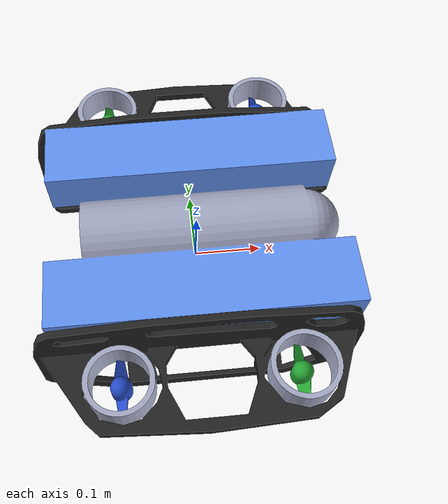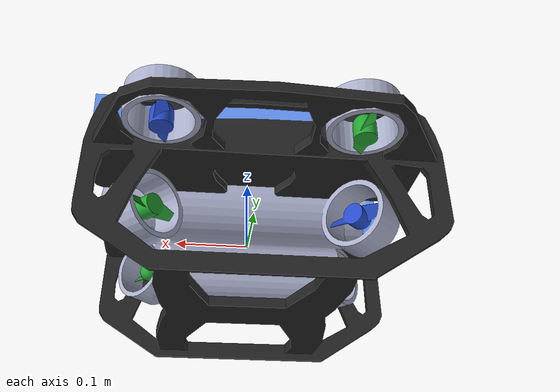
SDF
<?xml version="1.0" encoding="UTF-8"?>
<sdf version='1.9'>
  <model name="uuv_bluerov2_heavy">
    <!-- Pose remains the same -->
    <pose>0 0 0 0 0 0</pose>

    <!-- Base link definition unchanged except for velocity_decay note -->
    <link name="base_link">
      <inertial>
        <mass>11</mass>
        <inertia>
            <ixx>0.1</ixx>
            <ixy>0</ixy>
            <ixz>0</ixz>
            <iyy>0.1</iyy>
            <iyz>0</iyz>
            <izz>0.1</izz>
        </inertia>
      </inertial>

        <collision name='body_collision'>
                <geometry>
                  <sphere>
                    <radius>0.4</radius>
                  </sphere>
                </geometry>
          </collision>

      <!-- Visual definition unchanged for mesh -->
      <visual name="base_link_visual">
        <geometry>
          <mesh>
            <uri>model://uuv_bluerov2_heavy/meshes/BlueROV2heavy.dae</uri>
          </mesh>
        </geometry>
      </visual>

          <!-- Navsat sensor -->
          <sensor name="navsat_sensor" type="navsat">
            <always_on>1</always_on>
            <update_rate>30</update_rate>
          </sensor>

          <!-- IMU Sensor Replacement (standard Gazebo format) -->
            <sensor name="imu_sensor" type="imu">
              <always_on>1</always_on>
              <update_rate>250</update_rate>
              <imu>
                <angular_velocity>
                  <!-- Noise modeled after IIM42653 -->
                  <!-- 0.05 deg/s converted to rad/s -->
                  <x>
                    <noise type="gaussian">
                      <mean>0.0</mean>
                      <stddev>0.0008726646</stddev>
                    </noise>
                  </x>
                  <y>
                    <noise type="gaussian">
                      <mean>0.0</mean>
                      <stddev>0.0008726646</stddev>
                    </noise>
                  </y>
                  <z>
                    <noise type="gaussian">
                      <mean>0.0</mean>
                      <stddev>0.0008726646</stddev>
                    </noise>
                  </z>
                </angular_velocity>
                <linear_acceleration>
                  <!-- Noise modeled after IIM42653 -->
                  <!-- X & Y axis: 0.65 mg-rms converted to m/ss -->
                  <x>
                    <noise type="gaussian">
                      <mean>0.0</mean>
                      <stddev>0.00637</stddev>
                    </noise>
                  </x>
                  <y>
                    <noise type="gaussian">
                      <mean>0.0</mean>
                      <stddev>0.00637</stddev>
                    </noise>
                  </y>
                  <!-- Z axis: 0.70 mg-rms converted to m/ss-->
                  <z>
                    <noise type="gaussian">
                      <mean>0.0</mean>
                      <stddev>0.00686</stddev>
                    </noise>
                  </z>
                </linear_acceleration>
              </imu>
          </sensor>

          <!-- Magnetometer Sensor (standard Gazebo) -->
            <sensor name="magnetometer_sensor" type="magnetometer">
              <always_on>1</always_on>
              <update_rate>100</update_rate>
              <magnetometer>
                <!-- TODO: update to fix units and coordinate system when we move past Harmonic -->
                <!-- See https://github.com/gazebosim/gz-sim/pull/2460 -->
                <!-- 3mgauss RMS: NOTE: noise is in tesla but sensor reports data in gauss -->
                <!-- Noise modeled after IIS2MDC -->
                <x>
                  <noise type="gaussian">
                    <stddev>0.0001</stddev>
                  </noise>
                </x>
                <y>
                  <noise type="gaussian">
                    <stddev>0.0001</stddev>
                  </noise>
                </y>
                <z>
                  <noise type="gaussian">
                    <stddev>0.0001</stddev>
                  </noise>
                </z>
              </magnetometer>
            </sensor>

          <!-- Barometer Sensor -->
      <sensor name="air_pressure_sensor" type="air_pressure">
              <always_on>1</always_on>
              <update_rate>50</update_rate>
              <air_pressure>
                <!-- Noise modeled after BMP390 -->
                <pressure>
                  <noise type="gaussian">
                    <mean>0</mean>
                    <stddev>3</stddev>
                  </noise>
                </pressure>
              </air_pressure>
          </sensor>

    </link>

                <link name="thruster0">
                    <pose>-0.14 -0.10 0 0 1.570796 2.356194</pose>
                    <inertial>
                        <mass>1e-10</mass>
                        <inertia>
                            <ixx>1e-06</ixx>
                            <ixy>0</ixy>
                            <ixz>0</ixz>
                            <iyy>1e-06</iyy>
                            <iyz>0</iyz>
                            <izz>1e-06</izz>
                        </inertia>
                    </inertial>
                    <visual name="thruster0_visual">
                        <geometry>
                            <mesh>
                                <scale>1 1 1</scale>
                                <uri>model://uuv_bluerov2_heavy/meshes/prop.dae</uri>
                            </mesh>
                        </geometry>
                        <material>
                            <script>
                                <name>Gazebo/Blue</name>
                                <uri>file://media/materials/scripts/gazebo.material</uri>
                            </script>
                        </material>
                    </visual>
                </link>

                <joint name="thruster0_joint" type="revolute">
                    <axis>
                        <xyz>0 0 1</xyz>
                        <limit>
                            <lower>-1e+16</lower>
                            <upper>1e+16</upper>
                        </limit>
                    </axis>
                    <parent>base_link</parent>
                    <child>thruster0</child>
                </joint>

        <link name="thruster1">
                    <pose>0.14 -0.10 0 0 1.570796 0.78539815</pose>
                    <inertial>
                        <mass>1e-10</mass>
                        <inertia>
                            <ixx>1e-06</ixx>
                            <ixy>0</ixy>
                            <ixz>0</ixz>
                            <iyy>1e-06</iyy>
                            <iyz>0</iyz>
                            <izz>1e-06</izz>
                        </inertia>
                    </inertial>
                    <visual name="thruster1_visual">
                        <geometry>
                            <mesh>
                                <scale>1 1 1</scale>
                                <uri>model://uuv_bluerov2_heavy/meshes/prop.dae</uri>
                            </mesh>
                        </geometry>
                        <material>
                            <script>
                                <name>Gazebo/Green</name>
                                <uri>model://uuv_bluerov2_heavy/meshes/prop.dae</uri>
                            </script>
                        </material>
                    </visual>
                </link>

                <joint name="thruster1_joint" type="revolute">
                    <axis>
                        <xyz>0 0 1</xyz>
                        <limit>
                            <lower>-1e+16</lower>
                            <upper>1e+16</upper>
                        </limit>
                    </axis>
                    <parent>base_link</parent>
                    <child>thruster1</child>
                </joint>

                <link name="thruster2">
                    <pose>0.14 0.10 0 0 1.570796 -0.78539815</pose>
                    <inertial>
                        <mass>1e-10</mass>
                        <inertia>
                            <ixx>1e-06</ixx>
                            <ixy>0</ixy>
                            <ixz>0</ixz>
                            <iyy>1e-06</iyy>
                            <iyz>0</iyz>
                            <izz>1e-06</izz>
                        </inertia>
                    </inertial>
                    <visual name="thruster2_visual">
                        <geometry>
                            <mesh>
                                <scale>1 1 1</scale>
                                <uri>model://uuv_bluerov2_heavy/meshes/prop.dae</uri>
                            </mesh>
                        </geometry>
                        <material>
                            <script>
                                <name>Gazebo/Green</name>
                                <uri>file://media/materials/scripts/gazebo.material</uri>
                            </script>
                        </material>
                    </visual>
                </link>

                <joint name="thruster2_joint" type="revolute">
                    <axis>
                        <xyz>0 0 1</xyz>
                        <limit>
                            <lower>-1e+16</lower>
                            <upper>1e+16</upper>
                        </limit>
                    </axis>
                    <parent>base_link</parent>
                    <child>thruster2</child>
                </joint>

                <link name="thruster3">
                    <pose>-0.14 0.10 0 0 1.570796 -2.356194</pose>
                    <inertial>
                        <mass>1e-10</mass>
                        <inertia>
                            <ixx>1e-06</ixx>
                            <ixy>0</ixy>
                            <ixz>0</ixz>
                            <iyy>1e-06</iyy>
                            <iyz>0</iyz>
                            <izz>1e-06</izz>
                        </inertia>
                    </inertial>
                    <visual name="thruster3_visual">
                        <geometry>
                            <mesh>
                                <scale>1 1 1</scale>
                                <uri>model://uuv_bluerov2_heavy/meshes/prop.dae</uri>
                            </mesh>
                        </geometry>
                        <material>
                            <script>
                                <name>Gazebo/Blue</name>
                                <uri>file://media/materials/scripts/gazebo.material</uri>
                            </script>
                        </material>
                    </visual>
                </link>

                <joint name="thruster3_joint" type="revolute">
                    <axis>
                        <xyz>0 0 1</xyz>
                        <limit>
                            <lower>-1e+16</lower>
                            <upper>1e+16</upper>
                        </limit>
                    </axis>
                    <parent>base_link</parent>
                    <child>thruster3</child>
                </joint>

                <link name="thruster4">
                    <pose>0.12 -0.22 0.06 0 0 0</pose>
                    <inertial>
                        <mass>1e-10</mass>
                        <inertia>
                            <ixx>1e-06</ixx>
                            <ixy>0</ixy>
                            <ixz>0</ixz>
                            <iyy>1e-06</iyy>
                            <iyz>0</iyz>
                            <izz>1e-06</izz>
                        </inertia>
                    </inertial>
                    <visual name="thruster4_visual">
                        <geometry>
                            <mesh>
                                <scale>1 1 1</scale>
                                <uri>model://uuv_bluerov2_heavy/meshes/prop.dae</uri>
                            </mesh>
                        </geometry>
                        <material>
                            <script>
                                <name>Gazebo/Green</name>
                                <uri>file://media/materials/scripts/gazebo.material</uri>
                            </script>
                        </material>
                    </visual>
                </link>

                <joint name="thruster4_joint" type="revolute">
                    <axis>
                        <xyz>0 0 1</xyz>
                        <limit>
                            <lower>-1e+16</lower>
                            <upper>1e+16</upper>
                        </limit>
                    </axis>
                    <parent>base_link</parent>
                    <child>thruster4</child>
                </joint>

                <link name="thruster5">
                    <pose>0.12 0.22 0.06 0 0 0</pose>
                    <inertial>
                        <mass>1e-10</mass>
                        <inertia>
                            <ixx>1e-06</ixx>
                            <ixy>0</ixy>
                            <ixz>0</ixz>
                            <iyy>1e-06</iyy>
                            <iyz>0</iyz>
                            <izz>1e-06</izz>
                        </inertia>
                    </inertial>
                    <visual name="thruster5_visual">
                        <geometry>
                            <mesh>
                                <scale>1 1 1</scale>
                                <uri>model://uuv_bluerov2_heavy/meshes/prop.dae</uri>
                            </mesh>
                        </geometry>
                        <material>
                            <script>
                                <name>Gazebo/Blue</name>
                                <uri>file://media/materials/scripts/gazebo.material</uri>
                            </script>
                        </material>
                    </visual>
                </link>

                <joint name="thruster5_joint" type="revolute">
                    <axis>
                        <xyz>0 0 1</xyz>
                        <limit>
                            <lower>-1e+16</lower>
                            <upper>1e+16</upper>
                        </limit>
                    </axis>
                    <parent>base_link</parent>
                    <child>thruster5</child>
                </joint>

                <link name="thruster6">
                    <pose>-0.12 -0.22 0.06 0 0 0</pose>
                    <inertial>
                        <mass>1e-10</mass>
                        <inertia>
                            <ixx>1e-06</ixx>
                            <ixy>0</ixy>
                            <ixz>0</ixz>
                            <iyy>1e-06</iyy>
                            <iyz>0</iyz>
                            <izz>1e-06</izz>
                        </inertia>
                    </inertial>
                    <visual name="thruster6_visual">
                        <geometry>
                            <mesh>
                                <scale>1 1 1</scale>
                                <uri>model://uuv_bluerov2_heavy/meshes/prop.dae</uri>
                            </mesh>
                        </geometry>
                        <material>
                            <script>
                                <name>Gazebo/Blue</name>
                                <uri>file://media/materials/scripts/gazebo.material</uri>
                            </script>
                        </material>
                    </visual>
                </link>

                <joint name="thruster6_joint" type="revolute">
                    <axis>
                        <xyz>0 0 1</xyz>
                        <limit>
                            <lower>-1e+16</lower>
                            <upper>1e+16</upper>
                        </limit>
                    </axis>
                    <parent>base_link</parent>
                    <child>thruster6</child>
                </joint>

                <link name="thruster7">
                    <pose>-0.12 0.22 0.06 0 0 0</pose>
                    <inertial>
                        <mass>1e-10</mass>
                        <inertia>
                            <ixx>1e-06</ixx>
                            <ixy>0</ixy>
                            <ixz>0</ixz>
                            <iyy>1e-06</iyy>
                            <iyz>0</iyz>
                            <izz>1e-06</izz>
                        </inertia>
                    </inertial>
                    <visual name="thruster7_visual">
                        <geometry>
                            <mesh>
                                <scale>1 1 1</scale>
                                <uri>model://uuv_bluerov2_heavy/meshes/prop.dae</uri>
                            </mesh>
                        </geometry>
                        <material>
                            <script>
                                <name>Gazebo/Green</name>
                                <uri>file://media/materials/scripts/gazebo.material</uri>
                            </script>
                        </material>
                    </visual>
                </link>

                <joint name="thruster7_joint" type="revolute">
                    <axis>
                        <xyz>0 0 1</xyz>
                        <limit>
                            <lower>-1e+16</lower>
                            <upper>1e+16</upper>
                        </limit>
                    </axis>
                    <parent>base_link</parent>
                    <child>thruster7</child>
                </joint>

<plugin filename="gz-sim-multicopter-motor-model-system" name="gz::sim::systems::MulticopterMotorModel">
      <jointName>thruster0_joint</jointName>
      <linkName>thruster0</linkName>
      <turningDirection>ccw</turningDirection>
<reversible>true</reversible>
      <timeConstantUp>0.0125</timeConstantUp>
      <timeConstantDown>0.025</timeConstantDown>
      <maxRotVelocity>1100.0</maxRotVelocity>
      <motorConstant>0.00001</motorConstant>
      <momentConstant>0.01</momentConstant>
      <commandSubTopic>command/motor_speed</commandSubTopic>
      <motorNumber>0</motorNumber>
      <rotorDragCoefficient>0</rotorDragCoefficient>
      <rollingMomentCoefficient>0</rollingMomentCoefficient>
      <rotorVelocitySlowdownSim>100</rotorVelocitySlowdownSim>
      <motorType>velocity</motorType>
    </plugin>
    <plugin filename="gz-sim-multicopter-motor-model-system" name="gz::sim::systems::MulticopterMotorModel">
      <jointName>thruster1_joint</jointName>
      <linkName>thruster1</linkName>
      <turningDirection>ccw</turningDirection>
<reversible>true</reversible>
            <timeConstantUp>0.0125</timeConstantUp>
            <timeConstantDown>0.025</timeConstantDown>
            <maxRotVelocity>1100.0</maxRotVelocity>
            <motorConstant>0.00001</motorConstant>
            <momentConstant>0.01</momentConstant>
            <commandSubTopic>command/motor_speed</commandSubTopic>
            <motorNumber>1</motorNumber>
            <rotorDragCoefficient>0</rotorDragCoefficient>
            <rollingMomentCoefficient>0</rollingMomentCoefficient>
            <rotorVelocitySlowdownSim>100</rotorVelocitySlowdownSim>
            <motorType>velocity</motorType>
    </plugin>
    <plugin filename="gz-sim-multicopter-motor-model-system" name="gz::sim::systems::MulticopterMotorModel">
      <jointName>thruster2_joint</jointName>
      <linkName>thruster2</linkName>
      <turningDirection>ccw</turningDirection>
<reversible>true</reversible>
            <timeConstantUp>0.0125</timeConstantUp>
            <timeConstantDown>0.025</timeConstantDown>
            <maxRotVelocity>1100.0</maxRotVelocity>
            <motorConstant>0.00001</motorConstant>
            <momentConstant>-0.01</momentConstant>
            <commandSubTopic>command/motor_speed</commandSubTopic>
            <motorNumber>2</motorNumber>
            <rotorDragCoefficient>0</rotorDragCoefficient>
            <rollingMomentCoefficient>0</rollingMomentCoefficient>
            <rotorVelocitySlowdownSim>100</rotorVelocitySlowdownSim>
            <motorType>velocity</motorType>
    </plugin>
    <plugin filename="gz-sim-multicopter-motor-model-system" name="gz::sim::systems::MulticopterMotorModel">
      <jointName>thruster3_joint</jointName>
      <linkName>thruster3</linkName>
      <turningDirection>ccw</turningDirection>
<reversible>true</reversible>
            <timeConstantUp>0.0125</timeConstantUp>
            <timeConstantDown>0.025</timeConstantDown>
            <maxRotVelocity>1100.0</maxRotVelocity>
            <motorConstant>0.00001</motorConstant>
            <momentConstant>-0.01</momentConstant>
            <commandSubTopic>command/motor_speed</commandSubTopic>
            <motorNumber>3</motorNumber>
            <rotorDragCoefficient>0</rotorDragCoefficient>
            <rollingMomentCoefficient>0</rollingMomentCoefficient>
            <rotorVelocitySlowdownSim>100</rotorVelocitySlowdownSim>
            <motorType>velocity</motorType>
    </plugin>
    <plugin filename="gz-sim-multicopter-motor-model-system" name="gz::sim::systems::MulticopterMotorModel">
          <jointName>thruster4_joint</jointName>
          <linkName>thruster4</linkName>
          <turningDirection>ccw</turningDirection>
<reversible>true</reversible>
                <timeConstantUp>0.0125</timeConstantUp>
                <timeConstantDown>0.025</timeConstantDown>
                <maxRotVelocity>1100.0</maxRotVelocity>
                <motorConstant>0.00001</motorConstant>
                <momentConstant>0.01</momentConstant>
                <commandSubTopic>command/motor_speed</commandSubTopic>
                <motorNumber>4</motorNumber>
                <rotorDragCoefficient>0</rotorDragCoefficient>
                <rollingMomentCoefficient>0</rollingMomentCoefficient>
                <rotorVelocitySlowdownSim>100</rotorVelocitySlowdownSim>
                <motorType>velocity</motorType>
        </plugin>
        <plugin filename="gz-sim-multicopter-motor-model-system" name="gz::sim::systems::MulticopterMotorModel">
          <jointName>thruster5_joint</jointName>
          <linkName>thruster5</linkName>
          <turningDirection>ccw</turningDirection>
<reversible>true</reversible>
                <timeConstantUp>0.0125</timeConstantUp>
                <timeConstantDown>0.025</timeConstantDown>
                <maxRotVelocity>1100.0</maxRotVelocity>
                <motorConstant>0.00001</motorConstant>
                <momentConstant>-0.01</momentConstant>
                <commandSubTopic>command/motor_speed</commandSubTopic>
                <motorNumber>5</motorNumber>
                <rotorDragCoefficient>0</rotorDragCoefficient>
                <rollingMomentCoefficient>0</rollingMomentCoefficient>
                <rotorVelocitySlowdownSim>100</rotorVelocitySlowdownSim>
                <motorType>velocity</motorType>
        </plugin>
        <plugin filename="gz-sim-multicopter-motor-model-system" name="gz::sim::systems::MulticopterMotorModel">
          <jointName>thruster6_joint</jointName>
          <linkName>thruster6</linkName>
          <turningDirection>ccw</turningDirection>
<reversible>true</reversible>
                <timeConstantUp>0.0125</timeConstantUp>
                <timeConstantDown>0.025</timeConstantDown>
                <maxRotVelocity>1100.0</maxRotVelocity>
                <motorConstant>0.00001</motorConstant>
                <momentConstant>-0.01</momentConstant>
                <commandSubTopic>command/motor_speed</commandSubTopic>
                <motorNumber>6</motorNumber>
                <rotorDragCoefficient>0</rotorDragCoefficient>
                <rollingMomentCoefficient>0</rollingMomentCoefficient>
                <rotorVelocitySlowdownSim>100</rotorVelocitySlowdownSim>
                <motorType>velocity</motorType>
        </plugin>
        <plugin filename="gz-sim-multicopter-motor-model-system" name="gz::sim::systems::MulticopterMotorModel">
          <jointName>thruster7_joint</jointName>
          <linkName>thruster7</linkName>
          <turningDirection>ccw</turningDirection>
<reversible>true</reversible>
                <timeConstantUp>0.0125</timeConstantUp>
                <timeConstantDown>0.025</timeConstantDown>
                <maxRotVelocity>1100.0</maxRotVelocity>
                <motorConstant>0.00001</motorConstant>
                <momentConstant>0.01</momentConstant>
                <commandSubTopic>command/motor_speed</commandSubTopic>
                <motorNumber>7</motorNumber>
                <rotorDragCoefficient>0</rotorDragCoefficient>
                <rollingMomentCoefficient>0</rollingMomentCoefficient>
                <rotorVelocitySlowdownSim>100</rotorVelocitySlowdownSim>
                <motorType>velocity</motorType>
        </plugin>

        <!-- Uncomment to add hydrodynamics -->
        <plugin
                filename="gz-sim-hydrodynamics-system"
                name="gz::sim::systems::Hydrodynamics">
                <link_name>base_link</link_name>
                <xDotU>-1.11</xDotU>
                <yDotV>-2.8</yDotV>
                <zDotW>-2.8</zDotW>
                <kDotP>-0.00451</kDotP>
                <mDotQ>-0.0163</mDotQ>
                <nDotR>-0.0163</nDotR>
                <xUabsU>-0.2</xUabsU>
                <xU>-5.39</xU>
                <yVabsV>-0.2</yVabsV>
                <yV>-17.36</yV>
                <zWabsW>-0.2</zWabsW>
                <zW>-17.36</zW>
                <kPabsP>-0.2</kPabsP>
                <kP>-0.00114 </kP>
                <mQabsQ>-0.2</mQabsQ>
                <mQ>-0.007</mQ>
                <nRabsR>-0.2</nRabsR>
                <nR>-0.007</nR>
        </plugin>

  </model>
</sdf>
